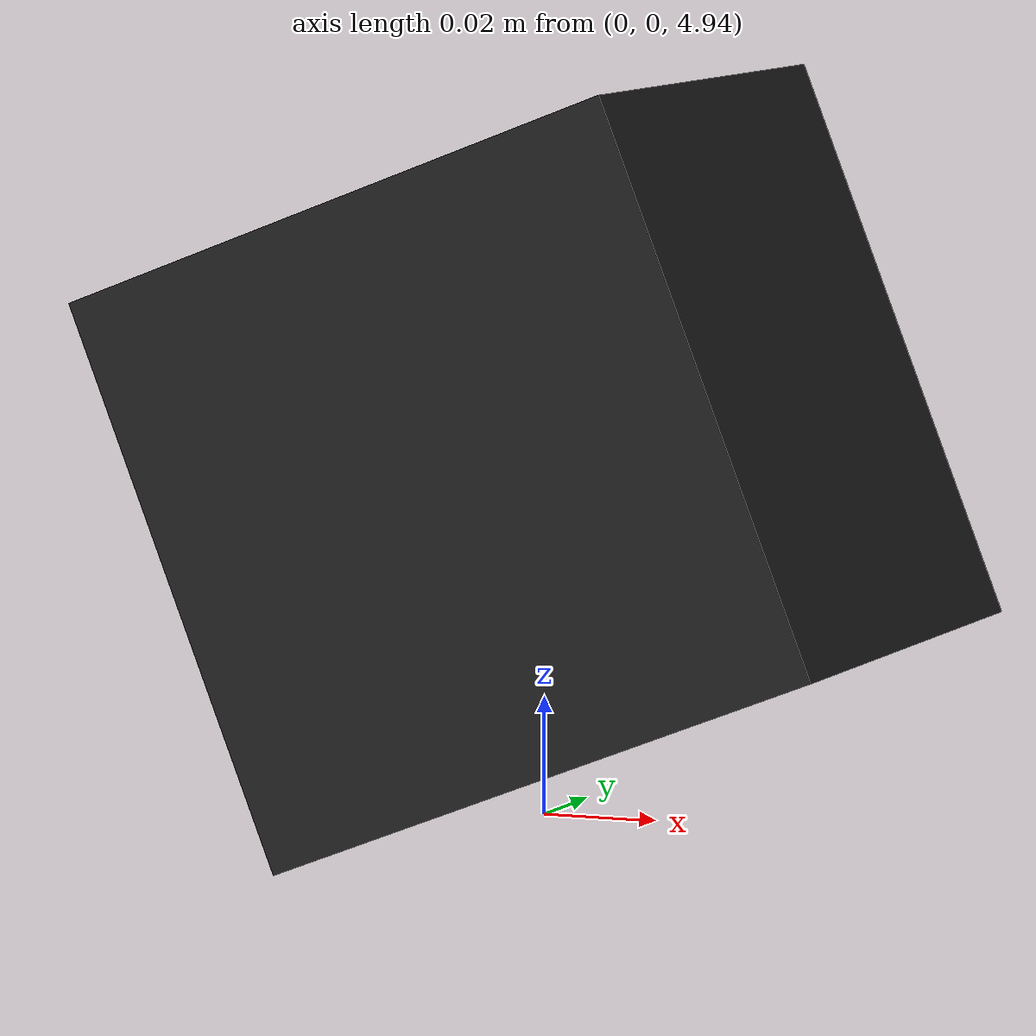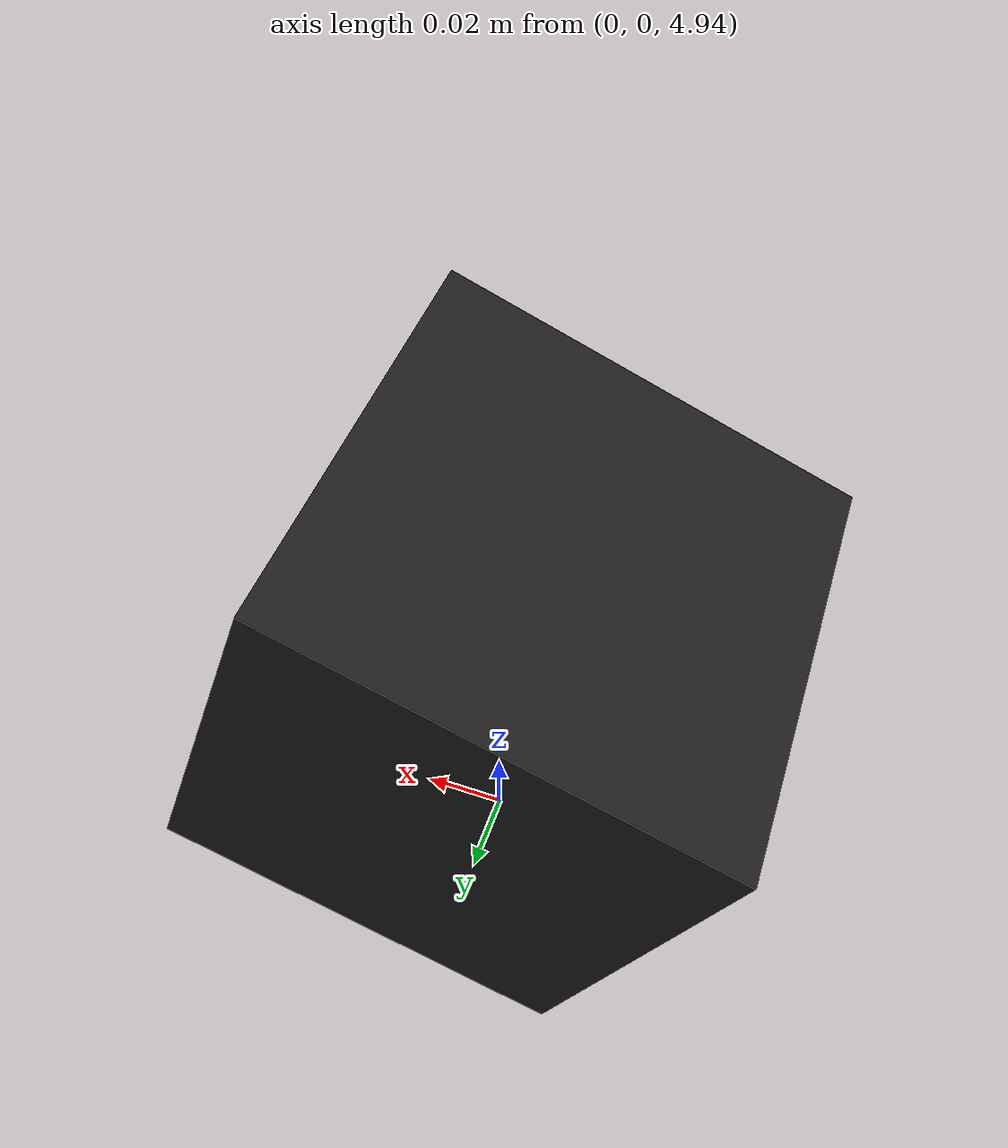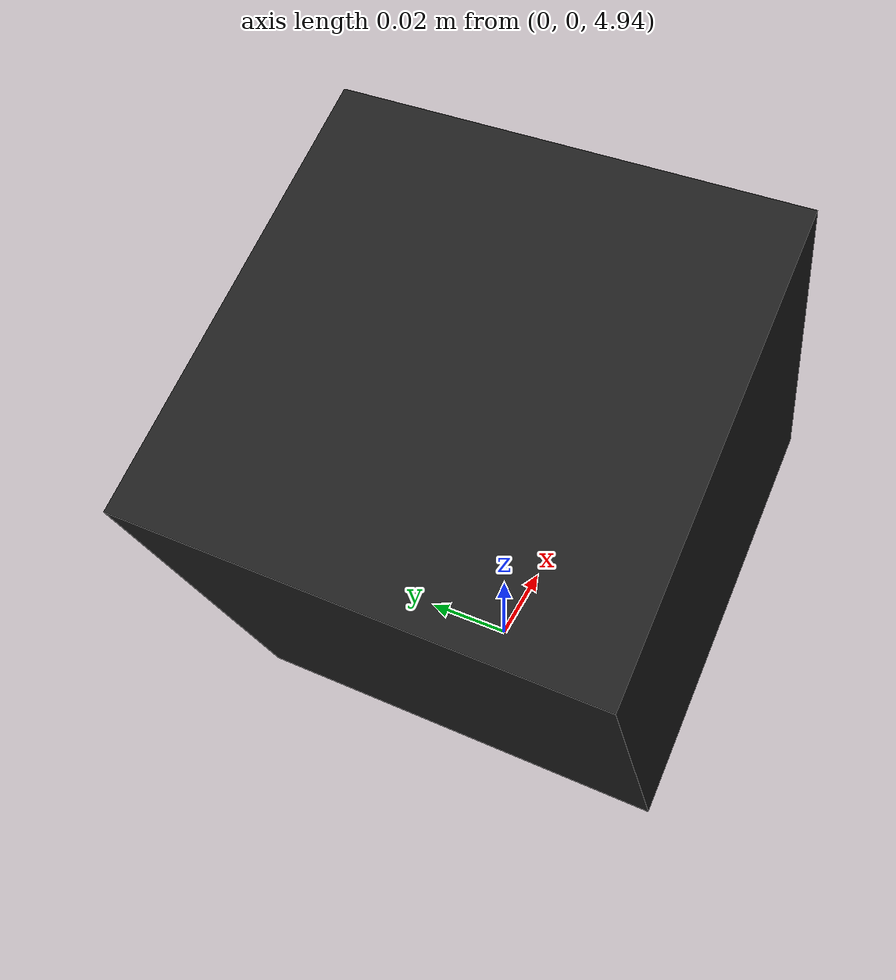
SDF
<?xml version="1.0" ?>
<sdf version="1.5">
    <model name='movable_camera'>
      <pose frame=''>0 0 5 0.0 1.20 0.0</pose>
      <link name='link'>
        <inertial>
          <mass>0.1</mass>
          <inertia>
            <ixx>0.000166667</ixx>
            <iyy>0.000166667</iyy>
            <izz>0.000166667</izz>
            <ixy>0</ixy>
            <ixz>0</ixz>
            <iyz>0</iyz>
          </inertia>
        </inertial>
        <collision name='collision'>
          <geometry>
            <box>
              <size>0.1 0.1 0.1</size>
            </box>
          </geometry>
          <max_contacts>10</max_contacts>
          <surface>
            <contact>
              <ode/>
            </contact>
            <bounce/>
            <friction>
              <ode/>
            </friction>
          </surface>
        </collision>
        <visual name='visual'>
          <geometry>
            <box>
              <size>0.1 0.1 0.1</size>
            </box>
          </geometry>
          <material>
            <script>
              <name>Gazebo/Black</name>
            </script>
          </material>
        </visual>
        <sensor name='camera1' type='camera'>
          <camera name='__default__'>
            <horizontal_fov>2.0943</horizontal_fov>
            <image>
              <width>1280</width>
	      <!-->seria 180, pero a lsd_slam no le gusta que no sea multiplo de 16, porque sea?<-->
              <height>720</height>
            </image>
            <clip>
              <near>0.1</near>
              <far>100</far>
            </clip>
            <save enabled='false'>
              <path>/home/emanuel/Descargas</path>
            </save>
	    <distortion>
		<k1>0.012107108529057053</k1>
		<k2>-0.021012380816722260</k2>
		<p1>0.0</p1>
		<p2>0.0</p2>
		<k3>0.0032618477474296100</k3>
	    </distortion>
          </camera>
          <always_on>1</always_on>
	  <!-- update rate no tiene que estar, jode con la
          visualizacion en la camara de la onda caustica-->
          <visualize>true</visualize>
          <plugin name='camera_controller' filename='libgazebo_ros_camera.so'>
            <alwaysOn>true</alwaysOn>
            <updateRate>30.0</updateRate>
            <cameraName>movable_camera</cameraName>
            <imageTopicName>image_raw</imageTopicName>
            <cameraInfoTopicName>camera_info</cameraInfoTopicName>
            <frameName>camera</frameName>
            <hackBaseline>0.07</hackBaseline>
            <distortionK1>0.0</distortionK1>
            <distortionK2>0.0</distortionK2>
            <distortionK3>0.0</distortionK3>
            <distortionT1>0.0</distortionT1>
            <distortionT2>0.0</distortionT2>
          </plugin>
        </sensor>
        <self_collide>0</self_collide>
        <kinematic>0</kinematic>
        <gravity>0</gravity>
      </link>
      <plugin name='object_controller' filename='libgazebo_ros_planar_move.so'>
        <commandTopic>movable_camera/cmd_vel</commandTopic>
        <odometryTopic>movable_camera/odom</odometryTopic>
        <odometryFrame>odom</odometryFrame>
        <odometryRate>20.0</odometryRate>
        <robotBaseFrame>link</robotBaseFrame>
      </plugin>
    </model>
</sdf>
